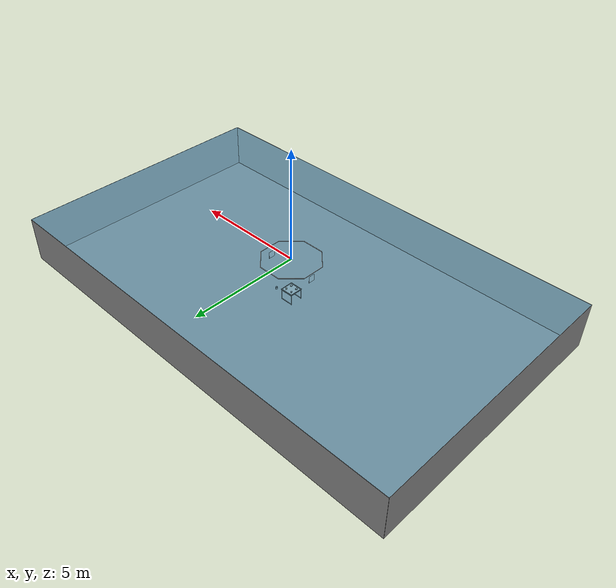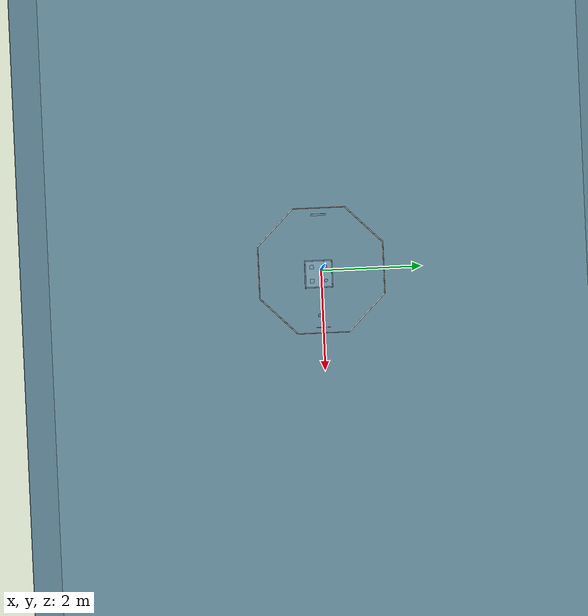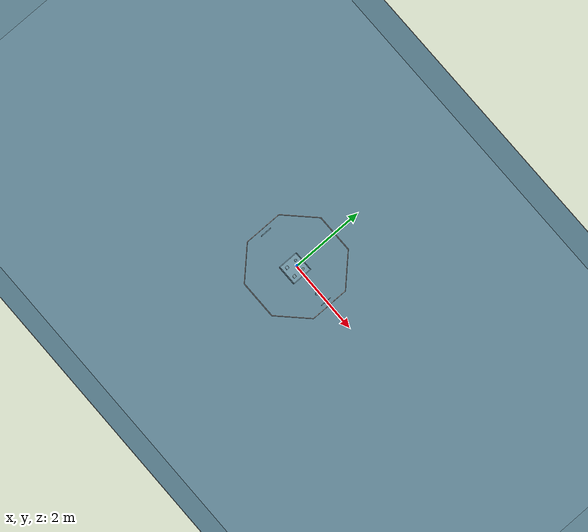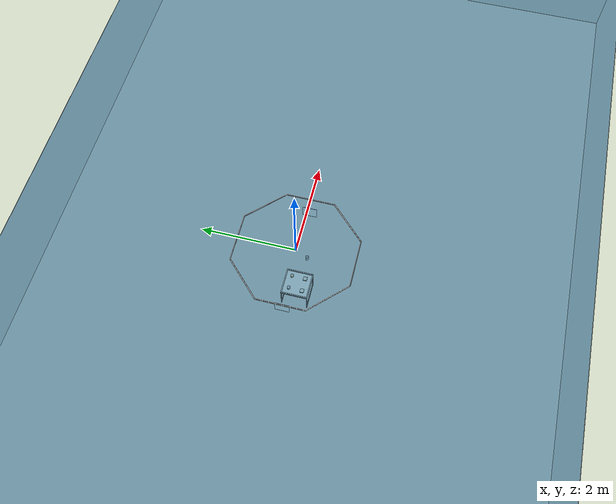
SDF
<sdf version="1.9">
 <world name="rs_task_octagon">
  <plugin filename="gz-sim-particle-emitter-system" name="gz::sim::systems::ParticleEmitter"/>
  <plugin filename="gz-sim-physics-system" name="gz::sim::systems::Physics"/>
  <plugin filename="gz-sim-user-commands-system" name="gz::sim::systems::UserCommands"/>
  <plugin filename="gz-sim-scene-broadcaster-system" name="gz::sim::systems::SceneBroadcaster"/>
  <plugin filename="gz-sim-apply-link-wrench-system" name="gz::sim::systems::ApplyLinkWrench"/>
  <plugin filename="gz-sim-imu-system" name="gz::sim::systems::Imu"/>
  <plugin filename="gz-sim-sensors-system" name="gz::sim::systems::Sensors">
   <render_engine>ogre2</render_engine>
  </plugin>
  <plugin filename="gz-sim-dvl-system" name="gz::sim::systems::DopplerVelocityLogSystem"/>
  <plugin filename="gz-sim-buoyancy-system" name="gz::sim::systems::Buoyancy">
   <graded_buoyancy>
    <default_density>1000</default_density>
    <density_change><above_depth>0</above_depth><density>1</density></density_change>
   </graded_buoyancy>
   <enable>mongla</enable>
   <enable>item_bolt</enable>
   <enable>item_plug</enable>
   <enable>item_pill</enable>
   <enable>item_bandage</enable>
   <enable>payload_shot_0</enable>
   <enable>payload_shot_1</enable>
   <enable>payload_shot_2</enable>
   <enable>payload_shot_3</enable>
   <enable>payload_shot_4</enable>
   <enable>payload_shot_5</enable>
   <enable>payload_shot_6</enable>
   <enable>payload_shot_7</enable>
   <enable>payload_shot_8</enable>
   <enable>payload_shot_9</enable>
   <enable>payload_shot_10</enable>
   <enable>payload_shot_11</enable>
  </plugin>
  <physics name="default" type="dart">
   <max_step_size>0.001</max_step_size>
   <real_time_factor>1.0</real_time_factor>
   <real_time_update_rate>1000</real_time_update_rate>
   <dart>
    <collision_detector>bullet</collision_detector>
    <solver><solver_type>dantzig</solver_type></solver>
   </dart>
  </physics>
  <gravity>0 0 -9.81</gravity>
  <magnetic_field>3.9e-05 1.1e-06 2.6e-05</magnetic_field>
  <atmosphere type="adiabatic"/>
  <scene>
   <ambient>0.4 0.5 0.55 1</ambient>
   <background>0.08 0.26 0.4 1</background>
   <shadows>true</shadows>
   <fog>
    <color>0.14 0.34 0.42 1</color>
    <type>linear</type>
    <start>3.0</start>
    <end>40.0</end>
    <density>0.01</density>
   </fog>
  </scene>
  <light type="directional" name="sun">
   <pose>0 0 10 0 0 0</pose>
   <diffuse>0.48 0.52 0.56 1</diffuse>
   <specular>0.10 0.10 0.11 1</specular>
   <direction>-0.4 0.15 -0.9</direction>
  </light>
  <light type="directional" name="fill">
   <cast_shadows>false</cast_shadows>
   <pose>0 0 5 0 0 0</pose>
   <diffuse>0.22 0.28 0.34 1</diffuse>
   <specular>0.04 0.05 0.06 1</specular>
   <direction>0.3 -0.2 -1</direction>
  </light>
  <light type="directional" name="caustic_fill">
   <cast_shadows>false</cast_shadows>
   <pose>0 0 3 0 0 0</pose>
   <diffuse>0.12 0.22 0.26 1</diffuse>
   <specular>0.02 0.03 0.04 1</specular>
   <direction>0.1 0.35 -0.85</direction>
  </light>
  <model name="robosub_pool">
   <static>true</static>
   <link name="floor">
    <pose>0 0 -2.1 0 0 0</pose>
    <inertial>
     <mass>1000</mass>
     <inertia><ixx>1000</ixx><ixy>0</ixy><ixz>0</ixz><iyy>1000</iyy><iyz>0</iyz><izz>1000</izz></inertia>
    </inertial>
    <visual name="floor_visual">
     <pose>0 0 0.005 0 0 0</pose>
     <geometry><box><size>20 12 0.01</size></box></geometry>
     <material>
      <ambient>0.55 0.55 0.55 1</ambient>
      <diffuse>0.55 0.55 0.55 1</diffuse>
      <specular>0.08 0.08 0.08 1</specular>
      <emissive>0 0 0 1</emissive>
      <pbr>
       <metal>
        <albedo_map>model://robosub_textures/pool_floor.png</albedo_map>
        <metalness>0.0</metalness>
        <roughness>0.85</roughness>
       </metal>
      </pbr>
     </material>
    </visual>
    <collision name="floor_collision">
     <pose>0 0 -0.05 0 0 0</pose>
     <geometry><box><size>20 12 0.1</size></box></geometry>
    </collision>
   </link>
   <link name="wall_x_pos">
    <inertial>
     <mass>1000</mass>
     <inertia><ixx>1000</ixx><ixy>0</ixy><ixz>0</ixz><iyy>1000</iyy><iyz>0</iyz><izz>1000</izz></inertia>
    </inertial>
    <visual name="wall_x_pos_visual">
     <pose>10 0 -1.05 0 0 0</pose>
     <geometry><box><size>0.01 12 2.1</size></box></geometry>
     <material>
      <ambient>0.55 0.55 0.55 1</ambient>
      <diffuse>0.55 0.55 0.55 1</diffuse>
      <specular>0.08 0.08 0.08 1</specular>
      <emissive>0 0 0 1</emissive>
      <pbr>
       <metal>
        <albedo_map>model://robosub_textures/pool_wall_long.png</albedo_map>
        <metalness>0.0</metalness>
        <roughness>0.85</roughness>
       </metal>
      </pbr>
     </material>
    </visual>
    <collision name="wall_x_pos_collision">
     <pose>10.105 0 -1.05 0 0 0</pose>
     <geometry><box><size>0.2 12.4 2.1</size></box></geometry>
    </collision>
   </link>
   <link name="wall_x_neg">
    <inertial>
     <mass>1000</mass>
     <inertia><ixx>1000</ixx><ixy>0</ixy><ixz>0</ixz><iyy>1000</iyy><iyz>0</iyz><izz>1000</izz></inertia>
    </inertial>
    <visual name="wall_x_neg_visual">
     <pose>-10 0 -1.05 0 0 0</pose>
     <geometry><box><size>0.01 12 2.1</size></box></geometry>
     <material>
      <ambient>0.55 0.55 0.55 1</ambient>
      <diffuse>0.55 0.55 0.55 1</diffuse>
      <specular>0.08 0.08 0.08 1</specular>
      <emissive>0 0 0 1</emissive>
      <pbr>
       <metal>
        <albedo_map>model://robosub_textures/pool_wall_long.png</albedo_map>
        <metalness>0.0</metalness>
        <roughness>0.85</roughness>
       </metal>
      </pbr>
     </material>
    </visual>
    <collision name="wall_x_neg_collision">
     <pose>-10.105 0 -1.05 0 0 0</pose>
     <geometry><box><size>0.2 12.4 2.1</size></box></geometry>
    </collision>
   </link>
   <link name="wall_y_pos">
    <inertial>
     <mass>1000</mass>
     <inertia><ixx>1000</ixx><ixy>0</ixy><ixz>0</ixz><iyy>1000</iyy><iyz>0</iyz><izz>1000</izz></inertia>
    </inertial>
    <visual name="wall_y_pos_visual">
     <pose>0 6 -1.05 0 0 0</pose>
     <geometry><box><size>20 0.01 2.1</size></box></geometry>
     <material>
      <ambient>0.55 0.55 0.55 1</ambient>
      <diffuse>0.55 0.55 0.55 1</diffuse>
      <specular>0.08 0.08 0.08 1</specular>
      <emissive>0 0 0 1</emissive>
      <pbr>
       <metal>
        <albedo_map>model://robosub_textures/pool_wall_short.png</albedo_map>
        <metalness>0.0</metalness>
        <roughness>0.85</roughness>
       </metal>
      </pbr>
     </material>
    </visual>
    <collision name="wall_y_pos_collision">
     <pose>0 6.105 -1.05 0 0 0</pose>
     <geometry><box><size>20 0.2 2.1</size></box></geometry>
    </collision>
   </link>
   <link name="wall_y_neg">
    <inertial>
     <mass>1000</mass>
     <inertia><ixx>1000</ixx><ixy>0</ixy><ixz>0</ixz><iyy>1000</iyy><iyz>0</iyz><izz>1000</izz></inertia>
    </inertial>
    <visual name="wall_y_neg_visual">
     <pose>0 -6 -1.05 0 0 0</pose>
     <geometry><box><size>20 0.01 2.1</size></box></geometry>
     <material>
      <ambient>0.55 0.55 0.55 1</ambient>
      <diffuse>0.55 0.55 0.55 1</diffuse>
      <specular>0.08 0.08 0.08 1</specular>
      <emissive>0 0 0 1</emissive>
      <pbr>
       <metal>
        <albedo_map>model://robosub_textures/pool_wall_short.png</albedo_map>
        <metalness>0.0</metalness>
        <roughness>0.85</roughness>
       </metal>
      </pbr>
     </material>
    </visual>
    <collision name="wall_y_neg_collision">
     <pose>0 -6.105 -1.05 0 0 0</pose>
     <geometry><box><size>20 0.2 2.1</size></box></geometry>
    </collision>
   </link>
   <link name="water_surface">
    <inertial>
     <mass>1</mass>
     <inertia><ixx>1</ixx><ixy>0</ixy><ixz>0</ixz><iyy>1</iyy><iyz>0</iyz><izz>1</izz></inertia>
    </inertial>
    <visual name="water_surface_visual">
     <cast_shadows>false</cast_shadows>
     <transparency>0.18</transparency>
     <geometry><mesh><uri>model://robosub_meshes/meshes/water_robosub.obj</uri></mesh></geometry>
     <material>
      <ambient>0.42 0.6 0.68 1</ambient>
      <diffuse>0.42 0.6 0.68 1</diffuse>
      <specular>0.35 0.35 0.35 1</specular>
      <emissive>0.1 0.1 0.1 1</emissive>
      <pbr>
       <metal>
        <albedo_map>model://robosub_textures/water_surface.png</albedo_map>
        <metalness>0.0</metalness>
        <roughness>0.15</roughness>
       </metal>
      </pbr>
     </material>
    </visual>
   </link>
  </model>
  <model name="marine_snow">
   <static>true</static>
   <pose>0 0 -1.05 0 0 0</pose>
   <link name="link">
    <particle_emitter name="snow" type="box">
     <emitting>true</emitting>
     <size>12 12 2.1</size>
     <particle_size>0.006 0.006 0.006</particle_size>
     <lifetime>30</lifetime>
     <min_velocity>0.004</min_velocity>
     <max_velocity>0.025</max_velocity>
     <scale_rate>0</scale_rate>
     <rate>900</rate>
     <topic>marine_snow</topic>
     <material>
      <diffuse>0.80 0.84 0.80</diffuse>
      <specular>0.05 0.05 0.05</specular>
      <pbr><metal><albedo_map>model://robosub_textures/marine_snow.png</albedo_map></metal></pbr>
     </material>
    </particle_emitter>
   </link>
  </model>
  <include><uri>model://robosub_octagon</uri><name>octagon</name></include>
  <include>
   <uri>model://robosub_resupply_table</uri>
   <name>resupply_table</name>
   <pose>0 0 -2.1 0 0 0</pose>
  </include>
  <include><uri>model://robosub_pinger</uri><name>pinger_restore</name><pose>0.9 0 -2.1 0 0 0</pose></include>
  <include>
   <uri>model://robosub_item_bolt</uri>
   <name>item_bolt</name>
   <pose>-0.15 0.15 -1.58 0 0 0</pose>
  </include>
  <include>
   <uri>model://robosub_item_plug</uri>
   <name>item_plug</name>
   <pose>0.15 0.15 -1.58 0 0 0</pose>
  </include>
  <include>
   <uri>model://robosub_item_pill</uri>
   <name>item_pill</name>
   <pose>-0.15 -0.15 -1.58 0 0 0</pose>
  </include>
  <include>
   <uri>model://robosub_item_bandage</uri>
   <name>item_bandage</name>
   <pose>0.15 -0.15 -1.58 0 0 0</pose>
  </include>
 </world>
</sdf>

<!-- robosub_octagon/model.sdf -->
<sdf version="1.9">
  <model name="robosub_octagon">
    <static>true</static>
    <plugin filename="gz-sim-label-system" name="gz::sim::systems::Label">
      <label>17</label>
    </plugin>
    <link name="side_0">
      <pose>1.24724 0 0 0 1.5708 1.5708</pose>
      <inertial>
        <pose>0 0 0 0 0 0</pose>
        <mass>1</mass>
        <inertia>
          <ixx>0.0889939</ixx><ixy>0</ixy><ixz>0</ixz>
          <iyy>0.0889939</iyy><iyz>0</iyz>
          <izz>5.5125e-05</izz>
        </inertia>
      </inertial>
      <visual name="side_0_visual">
        <pose>0 0 0 0 0 0</pose>
        <geometry><cylinder><radius>0.0105</radius><length>1.03325</length></cylinder></geometry>
        <material>
          <ambient>0.92 0.92 0.92 1</ambient>
          <diffuse>0.92 0.92 0.92 1</diffuse>
          <specular>0.55 0.55 0.55 1</specular>
          <emissive>0.258 0.258 0.258 1</emissive>
          <pbr>
            <metal>
              <albedo_map>model://robosub_textures/albedo_pvc.png</albedo_map>
              <metalness>0.0</metalness>
              <roughness_map>model://robosub_textures/rough_pvc.png</roughness_map>
              <normal_map>model://robosub_textures/norm_pvc.png</normal_map>
            </metal>
          </pbr>
        </material>
      </visual>
    </link>
    <link name="side_1">
      <pose>0.88193 0.88193 0 0 1.5708 2.35619</pose>
      <inertial>
        <pose>0 0 0 0 0 0</pose>
        <mass>1</mass>
        <inertia>
          <ixx>0.0889939</ixx><ixy>0</ixy><ixz>0</ixz>
          <iyy>0.0889939</iyy><iyz>0</iyz>
          <izz>5.5125e-05</izz>
        </inertia>
      </inertial>
      <visual name="side_1_visual">
        <pose>0 0 0 0 0 0</pose>
        <geometry><cylinder><radius>0.0105</radius><length>1.03325</length></cylinder></geometry>
        <material>
          <ambient>0.92 0.92 0.92 1</ambient>
          <diffuse>0.92 0.92 0.92 1</diffuse>
          <specular>0.55 0.55 0.55 1</specular>
          <emissive>0.258 0.258 0.258 1</emissive>
          <pbr>
            <metal>
              <albedo_map>model://robosub_textures/albedo_pvc.png</albedo_map>
              <metalness>0.0</metalness>
              <roughness_map>model://robosub_textures/rough_pvc.png</roughness_map>
              <normal_map>model://robosub_textures/norm_pvc.png</normal_map>
            </metal>
          </pbr>
        </material>
      </visual>
    </link>
    <link name="side_2">
      <pose>7.63713e-17 1.24724 0 0 1.5708 3.14159</pose>
      <inertial>
        <pose>0 0 0 0 0 0</pose>
        <mass>1</mass>
        <inertia>
          <ixx>0.0889939</ixx><ixy>0</ixy><ixz>0</ixz>
          <iyy>0.0889939</iyy><iyz>0</iyz>
          <izz>5.5125e-05</izz>
        </inertia>
      </inertial>
      <visual name="side_2_visual">
        <pose>0 0 0 0 0 0</pose>
        <geometry><cylinder><radius>0.0105</radius><length>1.03325</length></cylinder></geometry>
        <material>
          <ambient>0.92 0.92 0.92 1</ambient>
          <diffuse>0.92 0.92 0.92 1</diffuse>
          <specular>0.55 0.55 0.55 1</specular>
          <emissive>0.258 0.258 0.258 1</emissive>
          <pbr>
            <metal>
              <albedo_map>model://robosub_textures/albedo_pvc.png</albedo_map>
              <metalness>0.0</metalness>
              <roughness_map>model://robosub_textures/rough_pvc.png</roughness_map>
              <normal_map>model://robosub_textures/norm_pvc.png</normal_map>
            </metal>
          </pbr>
        </material>
      </visual>
    </link>
    <link name="side_3">
      <pose>-0.88193 0.88193 0 0 1.5708 3.92699</pose>
      <inertial>
        <pose>0 0 0 0 0 0</pose>
        <mass>1</mass>
        <inertia>
          <ixx>0.0889939</ixx><ixy>0</ixy><ixz>0</ixz>
          <iyy>0.0889939</iyy><iyz>0</iyz>
          <izz>5.5125e-05</izz>
        </inertia>
      </inertial>
      <visual name="side_3_visual">
        <pose>0 0 0 0 0 0</pose>
        <geometry><cylinder><radius>0.0105</radius><length>1.03325</length></cylinder></geometry>
        <material>
          <ambient>0.92 0.92 0.92 1</ambient>
          <diffuse>0.92 0.92 0.92 1</diffuse>
          <specular>0.55 0.55 0.55 1</specular>
          <emissive>0.258 0.258 0.258 1</emissive>
          <pbr>
            <metal>
              <albedo_map>model://robosub_textures/albedo_pvc.png</albedo_map>
              <metalness>0.0</metalness>
              <roughness_map>model://robosub_textures/rough_pvc.png</roughness_map>
              <normal_map>model://robosub_textures/norm_pvc.png</normal_map>
            </metal>
          </pbr>
        </material>
      </visual>
    </link>
    <link name="side_4">
      <pose>-1.24724 1.52743e-16 0 0 1.5708 4.71239</pose>
      <inertial>
        <pose>0 0 0 0 0 0</pose>
        <mass>1</mass>
        <inertia>
          <ixx>0.0889939</ixx><ixy>0</ixy><ixz>0</ixz>
          <iyy>0.0889939</iyy><iyz>0</iyz>
          <izz>5.5125e-05</izz>
        </inertia>
      </inertial>
      <visual name="side_4_visual">
        <pose>0 0 0 0 0 0</pose>
        <geometry><cylinder><radius>0.0105</radius><length>1.03325</length></cylinder></geometry>
        <material>
          <ambient>0.92 0.92 0.92 1</ambient>
          <diffuse>0.92 0.92 0.92 1</diffuse>
          <specular>0.55 0.55 0.55 1</specular>
          <emissive>0.258 0.258 0.258 1</emissive>
          <pbr>
            <metal>
              <albedo_map>model://robosub_textures/albedo_pvc.png</albedo_map>
              <metalness>0.0</metalness>
              <roughness_map>model://robosub_textures/rough_pvc.png</roughness_map>
              <normal_map>model://robosub_textures/norm_pvc.png</normal_map>
            </metal>
          </pbr>
        </material>
      </visual>
    </link>
    <link name="side_5">
      <pose>-0.88193 -0.88193 0 0 1.5708 5.49779</pose>
      <inertial>
        <pose>0 0 0 0 0 0</pose>
        <mass>1</mass>
        <inertia>
          <ixx>0.0889939</ixx><ixy>0</ixy><ixz>0</ixz>
          <iyy>0.0889939</iyy><iyz>0</iyz>
          <izz>5.5125e-05</izz>
        </inertia>
      </inertial>
      <visual name="side_5_visual">
        <pose>0 0 0 0 0 0</pose>
        <geometry><cylinder><radius>0.0105</radius><length>1.03325</length></cylinder></geometry>
        <material>
          <ambient>0.92 0.92 0.92 1</ambient>
          <diffuse>0.92 0.92 0.92 1</diffuse>
          <specular>0.55 0.55 0.55 1</specular>
          <emissive>0.258 0.258 0.258 1</emissive>
          <pbr>
            <metal>
              <albedo_map>model://robosub_textures/albedo_pvc.png</albedo_map>
              <metalness>0.0</metalness>
              <roughness_map>model://robosub_textures/rough_pvc.png</roughness_map>
              <normal_map>model://robosub_textures/norm_pvc.png</normal_map>
            </metal>
          </pbr>
        </material>
      </visual>
    </link>
    <link name="side_6">
      <pose>-2.29114e-16 -1.24724 0 0 1.5708 6.28319</pose>
      <inertial>
        <pose>0 0 0 0 0 0</pose>
        <mass>1</mass>
        <inertia>
          <ixx>0.0889939</ixx><ixy>0</ixy><ixz>0</ixz>
          <iyy>0.0889939</iyy><iyz>0</iyz>
          <izz>5.5125e-05</izz>
        </inertia>
      </inertial>
      <visual name="side_6_visual">
        <pose>0 0 0 0 0 0</pose>
        <geometry><cylinder><radius>0.0105</radius><length>1.03325</length></cylinder></geometry>
        <material>
          <ambient>0.92 0.92 0.92 1</ambient>
          <diffuse>0.92 0.92 0.92 1</diffuse>
          <specular>0.55 0.55 0.55 1</specular>
          <emissive>0.258 0.258 0.258 1</emissive>
          <pbr>
            <metal>
              <albedo_map>model://robosub_textures/albedo_pvc.png</albedo_map>
              <metalness>0.0</metalness>
              <roughness_map>model://robosub_textures/rough_pvc.png</roughness_map>
              <normal_map>model://robosub_textures/norm_pvc.png</normal_map>
            </metal>
          </pbr>
        </material>
      </visual>
    </link>
    <link name="side_7">
      <pose>0.88193 -0.88193 0 0 1.5708 7.06858</pose>
      <inertial>
        <pose>0 0 0 0 0 0</pose>
        <mass>1</mass>
        <inertia>
          <ixx>0.0889939</ixx><ixy>0</ixy><ixz>0</ixz>
          <iyy>0.0889939</iyy><iyz>0</iyz>
          <izz>5.5125e-05</izz>
        </inertia>
      </inertial>
      <visual name="side_7_visual">
        <pose>0 0 0 0 0 0</pose>
        <geometry><cylinder><radius>0.0105</radius><length>1.03325</length></cylinder></geometry>
        <material>
          <ambient>0.92 0.92 0.92 1</ambient>
          <diffuse>0.92 0.92 0.92 1</diffuse>
          <specular>0.55 0.55 0.55 1</specular>
          <emissive>0.258 0.258 0.258 1</emissive>
          <pbr>
            <metal>
              <albedo_map>model://robosub_textures/albedo_pvc.png</albedo_map>
              <metalness>0.0</metalness>
              <roughness_map>model://robosub_textures/rough_pvc.png</roughness_map>
              <normal_map>model://robosub_textures/norm_pvc.png</normal_map>
            </metal>
          </pbr>
        </material>
      </visual>
    </link>
    <link name="role_sign_0">
      <pose>1.14724 0 -0.35 0 0 3.14159</pose>
      <inertial>
        <pose>0 0 0 0 0 0</pose>
        <mass>0.05</mass>
        <inertia>
          <ixx>0.000775208</ixx><ixy>0</ixy><ixz>0</ixz>
          <iyy>0.000387671</iyy><iyz>0</iyz>
          <izz>0.000387671</izz>
        </inertia>
      </inertial>
      <visual name="role_sign_0_visual">
        <pose>0 0 0 0 0 0</pose>
        <geometry><box><size>0.004 0.305 0.305</size></box></geometry>
        <material>
          <ambient>1 1 1 1</ambient>
          <diffuse>1 1 1 1</diffuse>
          <specular>0.06 0.06 0.06 1</specular>
          <emissive>0.1 0.1 0.1 1</emissive>
          <pbr>
            <metal>
              <albedo_map>model://robosub_textures/role_hammer_pick.png</albedo_map>
              <metalness>0.0</metalness>
              <roughness>0.55</roughness>
            </metal>
          </pbr>
        </material>
      </visual>
    </link>
    <link name="role_sign_1">
      <pose>-1.14724 1.40496e-16 -0.35 0 0 6.28319</pose>
      <inertial>
        <pose>0 0 0 0 0 0</pose>
        <mass>0.05</mass>
        <inertia>
          <ixx>0.000775208</ixx><ixy>0</ixy><ixz>0</ixz>
          <iyy>0.000387671</iyy><iyz>0</iyz>
          <izz>0.000387671</izz>
        </inertia>
      </inertial>
      <visual name="role_sign_1_visual">
        <pose>0 0 0 0 0 0</pose>
        <geometry><box><size>0.004 0.305 0.305</size></box></geometry>
        <material>
          <ambient>1 1 1 1</ambient>
          <diffuse>1 1 1 1</diffuse>
          <specular>0.06 0.06 0.06 1</specular>
          <emissive>0.1 0.1 0.1 1</emissive>
          <pbr>
            <metal>
              <albedo_map>model://robosub_textures/role_ring_buoy.png</albedo_map>
              <metalness>0.0</metalness>
              <roughness>0.55</roughness>
            </metal>
          </pbr>
        </material>
      </visual>
    </link>
  </model>
</sdf>

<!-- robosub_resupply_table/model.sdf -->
<sdf version="1.9">
  <model name="robosub_resupply_table">
    <static>true</static>
    <plugin filename="gz-sim-label-system" name="gz::sim::systems::Label">
      <label>18</label>
    </plugin>
    <link name="top">
      <pose>0 0 0.5 0 0 0</pose>
      <inertial>
        <pose>0 0 0 0 0 0</pose>
        <mass>2</mass>
        <inertia>
          <ixx>0.0600667</ixx><ixy>0</ixy><ixz>0</ixz>
          <iyy>0.0600667</iyy><iyz>0</iyz>
          <izz>0.12</izz>
        </inertia>
      </inertial>
      <visual name="top_visual">
        <pose>0 0 0 0 0 0</pose>
        <geometry><box><size>0.6 0.6 0.02</size></box></geometry>
        <material>
          <ambient>0.92 0.92 0.92 1</ambient>
          <diffuse>0.92 0.92 0.92 1</diffuse>
          <specular>0.55 0.55 0.55 1</specular>
          <emissive>0.258 0.258 0.258 1</emissive>
          <pbr>
            <metal>
              <albedo_map>model://robosub_textures/albedo_pvc.png</albedo_map>
              <metalness>0.0</metalness>
              <roughness_map>model://robosub_textures/rough_pvc.png</roughness_map>
              <normal_map>model://robosub_textures/norm_pvc.png</normal_map>
            </metal>
          </pbr>
        </material>
      </visual>
      <collision name="top_collision">
        <pose>0 0 0 0 0 0</pose>
        <geometry><box><size>0.6 0.6 0.02</size></box></geometry>
      </collision>
    </link>
    <link name="rim_xp">
      <pose>0.2895 0 0.52 0 0 0</pose>
      <inertial>
        <pose>0 0 0 0 0 0</pose>
        <mass>0.2</mass>
        <inertia>
          <ixx>0.006015</ixx><ixy>0</ixy><ixz>0</ixz>
          <iyy>2.235e-05</iyy><iyz>0</iyz>
          <izz>0.00600735</izz>
        </inertia>
      </inertial>
      <visual name="rim_xp_visual">
        <pose>0 0 0 0 0 0</pose>
        <geometry><box><size>0.021 0.6 0.03</size></box></geometry>
        <material>
          <ambient>0.92 0.92 0.92 1</ambient>
          <diffuse>0.92 0.92 0.92 1</diffuse>
          <specular>0.55 0.55 0.55 1</specular>
          <emissive>0.258 0.258 0.258 1</emissive>
          <pbr>
            <metal>
              <albedo_map>model://robosub_textures/albedo_pvc.png</albedo_map>
              <metalness>0.0</metalness>
              <roughness_map>model://robosub_textures/rough_pvc.png</roughness_map>
              <normal_map>model://robosub_textures/norm_pvc.png</normal_map>
            </metal>
          </pbr>
        </material>
      </visual>
      <collision name="rim_xp_collision">
        <pose>0 0 0 0 0 0</pose>
        <geometry><box><size>0.021 0.6 0.03</size></box></geometry>
      </collision>
    </link>
    <link name="rim_xn">
      <pose>-0.2895 0 0.52 0 0 0</pose>
      <inertial>
        <pose>0 0 0 0 0 0</pose>
        <mass>0.2</mass>
        <inertia>
          <ixx>0.006015</ixx><ixy>0</ixy><ixz>0</ixz>
          <iyy>2.235e-05</iyy><iyz>0</iyz>
          <izz>0.00600735</izz>
        </inertia>
      </inertial>
      <visual name="rim_xn_visual">
        <pose>0 0 0 0 0 0</pose>
        <geometry><box><size>0.021 0.6 0.03</size></box></geometry>
        <material>
          <ambient>0.92 0.92 0.92 1</ambient>
          <diffuse>0.92 0.92 0.92 1</diffuse>
          <specular>0.55 0.55 0.55 1</specular>
          <emissive>0.258 0.258 0.258 1</emissive>
          <pbr>
            <metal>
              <albedo_map>model://robosub_textures/albedo_pvc.png</albedo_map>
              <metalness>0.0</metalness>
              <roughness_map>model://robosub_textures/rough_pvc.png</roughness_map>
              <normal_map>model://robosub_textures/norm_pvc.png</normal_map>
            </metal>
          </pbr>
        </material>
      </visual>
      <collision name="rim_xn_collision">
        <pose>0 0 0 0 0 0</pose>
        <geometry><box><size>0.021 0.6 0.03</size></box></geometry>
      </collision>
    </link>
    <link name="rim_yp">
      <pose>0 0.2895 0.52 0 0 0</pose>
      <inertial>
        <pose>0 0 0 0 0 0</pose>
        <mass>0.2</mass>
        <inertia>
          <ixx>2.235e-05</ixx><ixy>0</ixy><ixz>0</ixz>
          <iyy>0.006015</iyy><iyz>0</iyz>
          <izz>0.00600735</izz>
        </inertia>
      </inertial>
      <visual name="rim_yp_visual">
        <pose>0 0 0 0 0 0</pose>
        <geometry><box><size>0.6 0.021 0.03</size></box></geometry>
        <material>
          <ambient>0.92 0.92 0.92 1</ambient>
          <diffuse>0.92 0.92 0.92 1</diffuse>
          <specular>0.55 0.55 0.55 1</specular>
          <emissive>0.258 0.258 0.258 1</emissive>
          <pbr>
            <metal>
              <albedo_map>model://robosub_textures/albedo_pvc.png</albedo_map>
              <metalness>0.0</metalness>
              <roughness_map>model://robosub_textures/rough_pvc.png</roughness_map>
              <normal_map>model://robosub_textures/norm_pvc.png</normal_map>
            </metal>
          </pbr>
        </material>
      </visual>
      <collision name="rim_yp_collision">
        <pose>0 0 0 0 0 0</pose>
        <geometry><box><size>0.6 0.021 0.03</size></box></geometry>
      </collision>
    </link>
    <link name="rim_yn">
      <pose>0 -0.2895 0.52 0 0 0</pose>
      <inertial>
        <pose>0 0 0 0 0 0</pose>
        <mass>0.2</mass>
        <inertia>
          <ixx>2.235e-05</ixx><ixy>0</ixy><ixz>0</ixz>
          <iyy>0.006015</iyy><iyz>0</iyz>
          <izz>0.00600735</izz>
        </inertia>
      </inertial>
      <visual name="rim_yn_visual">
        <pose>0 0 0 0 0 0</pose>
        <geometry><box><size>0.6 0.021 0.03</size></box></geometry>
        <material>
          <ambient>0.92 0.92 0.92 1</ambient>
          <diffuse>0.92 0.92 0.92 1</diffuse>
          <specular>0.55 0.55 0.55 1</specular>
          <emissive>0.258 0.258 0.258 1</emissive>
          <pbr>
            <metal>
              <albedo_map>model://robosub_textures/albedo_pvc.png</albedo_map>
              <metalness>0.0</metalness>
              <roughness_map>model://robosub_textures/rough_pvc.png</roughness_map>
              <normal_map>model://robosub_textures/norm_pvc.png</normal_map>
            </metal>
          </pbr>
        </material>
      </visual>
      <collision name="rim_yn_collision">
        <pose>0 0 0 0 0 0</pose>
        <geometry><box><size>0.6 0.021 0.03</size></box></geometry>
      </collision>
    </link>
    <link name="leg_0">
      <pose>0.2895 0.2895 0.25 0 0 0</pose>
      <inertial>
        <pose>0 0 0 0 0 0</pose>
        <mass>0.5</mass>
        <inertia>
          <ixx>0.0104304</ixx><ixy>0</ixy><ixz>0</ixz>
          <iyy>0.0104304</iyy><iyz>0</iyz>
          <izz>2.75625e-05</izz>
        </inertia>
      </inertial>
      <visual name="leg_0_visual">
        <pose>0 0 0 0 0 0</pose>
        <geometry><cylinder><radius>0.0105</radius><length>0.5</length></cylinder></geometry>
        <material>
          <ambient>0.92 0.92 0.92 1</ambient>
          <diffuse>0.92 0.92 0.92 1</diffuse>
          <specular>0.55 0.55 0.55 1</specular>
          <emissive>0.258 0.258 0.258 1</emissive>
          <pbr>
            <metal>
              <albedo_map>model://robosub_textures/albedo_pvc.png</albedo_map>
              <metalness>0.0</metalness>
              <roughness_map>model://robosub_textures/rough_pvc.png</roughness_map>
              <normal_map>model://robosub_textures/norm_pvc.png</normal_map>
            </metal>
          </pbr>
        </material>
      </visual>
    </link>
    <link name="leg_1">
      <pose>0.2895 -0.2895 0.25 0 0 0</pose>
      <inertial>
        <pose>0 0 0 0 0 0</pose>
        <mass>0.5</mass>
        <inertia>
          <ixx>0.0104304</ixx><ixy>0</ixy><ixz>0</ixz>
          <iyy>0.0104304</iyy><iyz>0</iyz>
          <izz>2.75625e-05</izz>
        </inertia>
      </inertial>
      <visual name="leg_1_visual">
        <pose>0 0 0 0 0 0</pose>
        <geometry><cylinder><radius>0.0105</radius><length>0.5</length></cylinder></geometry>
        <material>
          <ambient>0.92 0.92 0.92 1</ambient>
          <diffuse>0.92 0.92 0.92 1</diffuse>
          <specular>0.55 0.55 0.55 1</specular>
          <emissive>0.258 0.258 0.258 1</emissive>
          <pbr>
            <metal>
              <albedo_map>model://robosub_textures/albedo_pvc.png</albedo_map>
              <metalness>0.0</metalness>
              <roughness_map>model://robosub_textures/rough_pvc.png</roughness_map>
              <normal_map>model://robosub_textures/norm_pvc.png</normal_map>
            </metal>
          </pbr>
        </material>
      </visual>
    </link>
    <link name="leg_2">
      <pose>-0.2895 0.2895 0.25 0 0 0</pose>
      <inertial>
        <pose>0 0 0 0 0 0</pose>
        <mass>0.5</mass>
        <inertia>
          <ixx>0.0104304</ixx><ixy>0</ixy><ixz>0</ixz>
          <iyy>0.0104304</iyy><iyz>0</iyz>
          <izz>2.75625e-05</izz>
        </inertia>
      </inertial>
      <visual name="leg_2_visual">
        <pose>0 0 0 0 0 0</pose>
        <geometry><cylinder><radius>0.0105</radius><length>0.5</length></cylinder></geometry>
        <material>
          <ambient>0.92 0.92 0.92 1</ambient>
          <diffuse>0.92 0.92 0.92 1</diffuse>
          <specular>0.55 0.55 0.55 1</specular>
          <emissive>0.258 0.258 0.258 1</emissive>
          <pbr>
            <metal>
              <albedo_map>model://robosub_textures/albedo_pvc.png</albedo_map>
              <metalness>0.0</metalness>
              <roughness_map>model://robosub_textures/rough_pvc.png</roughness_map>
              <normal_map>model://robosub_textures/norm_pvc.png</normal_map>
            </metal>
          </pbr>
        </material>
      </visual>
    </link>
    <link name="leg_3">
      <pose>-0.2895 -0.2895 0.25 0 0 0</pose>
      <inertial>
        <pose>0 0 0 0 0 0</pose>
        <mass>0.5</mass>
        <inertia>
          <ixx>0.0104304</ixx><ixy>0</ixy><ixz>0</ixz>
          <iyy>0.0104304</iyy><iyz>0</iyz>
          <izz>2.75625e-05</izz>
        </inertia>
      </inertial>
      <visual name="leg_3_visual">
        <pose>0 0 0 0 0 0</pose>
        <geometry><cylinder><radius>0.0105</radius><length>0.5</length></cylinder></geometry>
        <material>
          <ambient>0.92 0.92 0.92 1</ambient>
          <diffuse>0.92 0.92 0.92 1</diffuse>
          <specular>0.55 0.55 0.55 1</specular>
          <emissive>0.258 0.258 0.258 1</emissive>
          <pbr>
            <metal>
              <albedo_map>model://robosub_textures/albedo_pvc.png</albedo_map>
              <metalness>0.0</metalness>
              <roughness_map>model://robosub_textures/rough_pvc.png</roughness_map>
              <normal_map>model://robosub_textures/norm_pvc.png</normal_map>
            </metal>
          </pbr>
        </material>
      </visual>
    </link>
    <link name="foot_yp">
      <pose>0 0.2895 0.03 0 1.5708 0</pose>
      <inertial>
        <pose>0 0 0 0 0 0</pose>
        <mass>0.4</mass>
        <inertia>
          <ixx>0.012011</ixx><ixy>0</ixy><ixz>0</ixz>
          <iyy>0.012011</iyy><iyz>0</iyz>
          <izz>2.205e-05</izz>
        </inertia>
      </inertial>
      <visual name="foot_yp_visual">
        <pose>0 0 0 0 0 0</pose>
        <geometry><cylinder><radius>0.0105</radius><length>0.6</length></cylinder></geometry>
        <material>
          <ambient>0.92 0.92 0.92 1</ambient>
          <diffuse>0.92 0.92 0.92 1</diffuse>
          <specular>0.55 0.55 0.55 1</specular>
          <emissive>0.258 0.258 0.258 1</emissive>
          <pbr>
            <metal>
              <albedo_map>model://robosub_textures/albedo_pvc.png</albedo_map>
              <metalness>0.0</metalness>
              <roughness_map>model://robosub_textures/rough_pvc.png</roughness_map>
              <normal_map>model://robosub_textures/norm_pvc.png</normal_map>
            </metal>
          </pbr>
        </material>
      </visual>
    </link>
    <link name="foot_yn">
      <pose>0 -0.2895 0.03 0 1.5708 0</pose>
      <inertial>
        <pose>0 0 0 0 0 0</pose>
        <mass>0.4</mass>
        <inertia>
          <ixx>0.012011</ixx><ixy>0</ixy><ixz>0</ixz>
          <iyy>0.012011</iyy><iyz>0</iyz>
          <izz>2.205e-05</izz>
        </inertia>
      </inertial>
      <visual name="foot_yn_visual">
        <pose>0 0 0 0 0 0</pose>
        <geometry><cylinder><radius>0.0105</radius><length>0.6</length></cylinder></geometry>
        <material>
          <ambient>0.92 0.92 0.92 1</ambient>
          <diffuse>0.92 0.92 0.92 1</diffuse>
          <specular>0.55 0.55 0.55 1</specular>
          <emissive>0.258 0.258 0.258 1</emissive>
          <pbr>
            <metal>
              <albedo_map>model://robosub_textures/albedo_pvc.png</albedo_map>
              <metalness>0.0</metalness>
              <roughness_map>model://robosub_textures/rough_pvc.png</roughness_map>
              <normal_map>model://robosub_textures/norm_pvc.png</normal_map>
            </metal>
          </pbr>
        </material>
      </visual>
    </link>
  </model>
</sdf>

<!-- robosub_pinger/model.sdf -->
<sdf version="1.9">
  <model name="robosub_pinger">
    <static>true</static>
    <plugin filename="gz-sim-label-system" name="gz::sim::systems::Label">
      <label>20</label>
    </plugin>
    <link name="body">
      <pose>0 0 0.06 0 0 0</pose>
      <inertial>
        <pose>0 0 0 0 0 0</pose>
        <mass>0.5</mass>
        <inertia>
          <ixx>0.000753125</ixx><ixy>0</ixy><ixz>0</ixz>
          <iyy>0.000753125</iyy><iyz>0</iyz>
          <izz>0.00030625</izz>
        </inertia>
      </inertial>
      <visual name="body_visual">
        <pose>0 0 0 0 0 0</pose>
        <geometry><cylinder><radius>0.035</radius><length>0.12</length></cylinder></geometry>
        <material>
          <ambient>0.15 0.15 0.17 1</ambient>
          <diffuse>0.15 0.15 0.17 1</diffuse>
          <specular>0.14 0.14 0.14 1</specular>
          <emissive>0.1 0.1 0.1 1</emissive>
          <pbr>
            <metal>
              <albedo_map>model://robosub_textures/albedo_plastic.png</albedo_map>
              <metalness>0.0</metalness>
              <roughness_map>model://robosub_textures/rough_plastic.png</roughness_map>
              <normal_map>model://robosub_textures/norm_plastic.png</normal_map>
            </metal>
          </pbr>
        </material>
      </visual>
      <collision name="body_collision">
        <pose>0 0 0 0 0 0</pose>
        <geometry><cylinder><radius>0.035</radius><length>0.12</length></cylinder></geometry>
      </collision>
    </link>
  </model>
</sdf>

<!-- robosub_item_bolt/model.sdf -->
<sdf version="1.9">
  <model name="robosub_item_bolt">
    <static>false</static>
    <plugin filename="gz-sim-label-system" name="gz::sim::systems::Label">
      <label>21</label>
    </plugin>
    <link name="body">
      <pose>0 0 0.025 0 0 0</pose>
      <inertial>
        <pose>0 0 0 0 0 0</pose>
        <mass>0.221286</mass>
        <inertia>
          <ixx>0.00011387</ixx><ixy>0</ixy><ixz>0</ixz>
          <iyy>0.00011387</iyy><iyz>0</iyz>
          <izz>0.000135538</izz>
        </inertia>
      </inertial>
      <visual name="body_visual">
        <pose>0 0 0 0 0 0</pose>
        <geometry><cylinder><radius>0.035</radius><length>0.05</length></cylinder></geometry>
        <material>
          <ambient>0.55 0.55 0.58 1</ambient>
          <diffuse>0.55 0.55 0.58 1</diffuse>
          <specular>0.14 0.14 0.14 1</specular>
          <emissive>0.1 0.1 0.1 1</emissive>
          <pbr>
            <metal>
              <albedo_map>model://robosub_textures/albedo_plastic.png</albedo_map>
              <metalness>0.0</metalness>
              <roughness_map>model://robosub_textures/rough_plastic.png</roughness_map>
              <normal_map>model://robosub_textures/norm_plastic.png</normal_map>
            </metal>
          </pbr>
        </material>
      </visual>
      <collision name="body_collision">
        <pose>0 0 0 0 0 0</pose>
        <geometry><cylinder><radius>0.035</radius><length>0.05</length></cylinder></geometry>
      </collision>
    </link>
  </model>
</sdf>

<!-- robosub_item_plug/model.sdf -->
<sdf version="1.9">
  <model name="robosub_item_plug">
    <static>false</static>
    <plugin filename="gz-sim-label-system" name="gz::sim::systems::Label">
      <label>22</label>
    </plugin>
    <link name="body">
      <pose>0 0 0.025 0 0 0</pose>
      <inertial>
        <pose>0 0 0 0 0 0</pose>
        <mass>0.221286</mass>
        <inertia>
          <ixx>0.00011387</ixx><ixy>0</ixy><ixz>0</ixz>
          <iyy>0.00011387</iyy><iyz>0</iyz>
          <izz>0.000135538</izz>
        </inertia>
      </inertial>
      <visual name="body_visual">
        <pose>0 0 0 0 0 0</pose>
        <geometry><cylinder><radius>0.035</radius><length>0.05</length></cylinder></geometry>
        <material>
          <ambient>0.8 0.65 0.25 1</ambient>
          <diffuse>0.8 0.65 0.25 1</diffuse>
          <specular>0.14 0.14 0.14 1</specular>
          <emissive>0.1 0.1 0.1 1</emissive>
          <pbr>
            <metal>
              <albedo_map>model://robosub_textures/albedo_plastic.png</albedo_map>
              <metalness>0.0</metalness>
              <roughness_map>model://robosub_textures/rough_plastic.png</roughness_map>
              <normal_map>model://robosub_textures/norm_plastic.png</normal_map>
            </metal>
          </pbr>
        </material>
      </visual>
      <collision name="body_collision">
        <pose>0 0 0 0 0 0</pose>
        <geometry><cylinder><radius>0.035</radius><length>0.05</length></cylinder></geometry>
      </collision>
    </link>
  </model>
</sdf>

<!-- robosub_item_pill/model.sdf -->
<sdf version="1.9">
  <model name="robosub_item_pill">
    <static>false</static>
    <plugin filename="gz-sim-label-system" name="gz::sim::systems::Label">
      <label>23</label>
    </plugin>
    <link name="body">
      <pose>0 0 0.015 0 0 0</pose>
      <inertial>
        <pose>0 0 0 0 0 0</pose>
        <mass>0.243432</mass>
        <inertia>
          <ixx>0.000161395</ixx><ixy>0</ixy><ixz>0</ixz>
          <iyy>0.000161395</iyy><iyz>0</iyz>
          <izz>0.000286276</izz>
        </inertia>
      </inertial>
      <visual name="body_visual">
        <pose>0 0 0 0 0 0</pose>
        <geometry><box><size>0.084 0.084 0.03</size></box></geometry>
        <material>
          <ambient>0.9 0.9 0.92 1</ambient>
          <diffuse>0.9 0.9 0.92 1</diffuse>
          <specular>0.14 0.14 0.14 1</specular>
          <emissive>0.1 0.1 0.1 1</emissive>
          <pbr>
            <metal>
              <albedo_map>model://robosub_textures/albedo_plastic.png</albedo_map>
              <metalness>0.0</metalness>
              <roughness_map>model://robosub_textures/rough_plastic.png</roughness_map>
              <normal_map>model://robosub_textures/norm_plastic.png</normal_map>
            </metal>
          </pbr>
        </material>
      </visual>
      <collision name="body_collision">
        <pose>0 0 0 0 0 0</pose>
        <geometry><box><size>0.084 0.084 0.03</size></box></geometry>
      </collision>
    </link>
  </model>
</sdf>

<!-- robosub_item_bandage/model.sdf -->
<sdf version="1.9">
  <model name="robosub_item_bandage">
    <static>false</static>
    <plugin filename="gz-sim-label-system" name="gz::sim::systems::Label">
      <label>24</label>
    </plugin>
    <link name="body">
      <pose>0 0 0.015 0 0 0</pose>
      <inertial>
        <pose>0 0 0 0 0 0</pose>
        <mass>0.243432</mass>
        <inertia>
          <ixx>0.000161395</ixx><ixy>0</ixy><ixz>0</ixz>
          <iyy>0.000161395</iyy><iyz>0</iyz>
          <izz>0.000286276</izz>
        </inertia>
      </inertial>
      <visual name="body_visual">
        <pose>0 0 0 0 0 0</pose>
        <geometry><box><size>0.084 0.084 0.03</size></box></geometry>
        <material>
          <ambient>0.93 0.85 0.7 1</ambient>
          <diffuse>0.93 0.85 0.7 1</diffuse>
          <specular>0.14 0.14 0.14 1</specular>
          <emissive>0.1 0.1 0.1 1</emissive>
          <pbr>
            <metal>
              <albedo_map>model://robosub_textures/albedo_plastic.png</albedo_map>
              <metalness>0.0</metalness>
              <roughness_map>model://robosub_textures/rough_plastic.png</roughness_map>
              <normal_map>model://robosub_textures/norm_plastic.png</normal_map>
            </metal>
          </pbr>
        </material>
      </visual>
      <collision name="body_collision">
        <pose>0 0 0 0 0 0</pose>
        <geometry><box><size>0.084 0.084 0.03</size></box></geometry>
      </collision>
    </link>
  </model>
</sdf>
